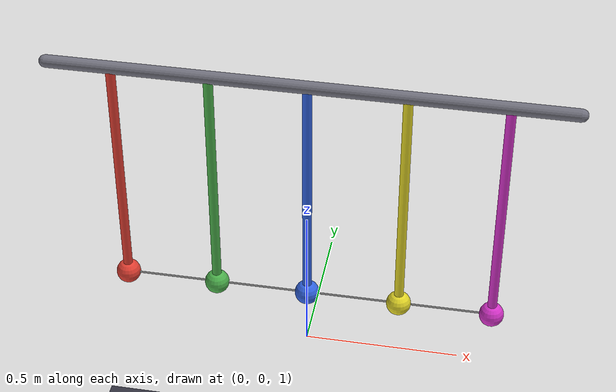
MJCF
<mujoco model="coupled_pendulums">
  <option gravity="0 0 -9.81" timestep="0.005"/>
  <default>
    <joint damping="0.08"/>
    <geom friction="0.5 0.02 0.02"/>
  </default>
  <worldbody>
    <light pos="0 0 5" diffuse="0.9 0.9 0.9"/>
    <geom name="floor" type="plane" size="5 5 0.1" rgba="0.2 0.2 0.25 1"/>
    <body name="bar" pos="0 0 2">
      <geom type="capsule" fromto="-0.8 0 0 0.8 0 0" size="0.02"
            rgba="0.45 0.45 0.5 1" mass="5"/>
      <body name="p1" pos="-0.6 0 0">
        <joint name="j1" type="hinge" axis="0 1 0"/>
        <geom type="capsule" fromto="0 0 0 0 0 -0.8" size="0.015"
              rgba="0.9 0.25 0.2 1" mass="0.3"/>
        <geom name="bob1" type="sphere" pos="0 0 -0.8" size="0.04"
              rgba="0.9 0.25 0.2 1" mass="0.5"/>
        <site name="s1" pos="0 0 -0.8" rgba="0 0 0 0"/>
      </body>
      <body name="p2" pos="-0.3 0 0">
        <joint name="j2" type="hinge" axis="0 1 0"/>
        <geom type="capsule" fromto="0 0 0 0 0 -0.8" size="0.015"
              rgba="0.3 0.7 0.3 1" mass="0.3"/>
        <geom name="bob2" type="sphere" pos="0 0 -0.8" size="0.04"
              rgba="0.3 0.7 0.3 1" mass="0.5"/>
        <site name="s2" pos="0 0 -0.8" rgba="0 0 0 0"/>
      </body>
      <body name="p3" pos="0 0 0">
        <joint name="j3" type="hinge" axis="0 1 0"/>
        <geom type="capsule" fromto="0 0 0 0 0 -0.8" size="0.015"
              rgba="0.2 0.4 0.9 1" mass="0.3"/>
        <geom name="bob3" type="sphere" pos="0 0 -0.8" size="0.04"
              rgba="0.2 0.4 0.9 1" mass="0.5"/>
        <site name="s3" pos="0 0 -0.8" rgba="0 0 0 0"/>
      </body>
      <body name="p4" pos="0.3 0 0">
        <joint name="j4" type="hinge" axis="0 1 0"/>
        <geom type="capsule" fromto="0 0 0 0 0 -0.8" size="0.015"
              rgba="0.9 0.85 0.15 1" mass="0.3"/>
        <geom name="bob4" type="sphere" pos="0 0 -0.8" size="0.04"
              rgba="0.9 0.85 0.15 1" mass="0.5"/>
        <site name="s4" pos="0 0 -0.8" rgba="0 0 0 0"/>
      </body>
      <body name="p5" pos="0.6 0 0">
        <joint name="j5" type="hinge" axis="0 1 0"/>
        <geom type="capsule" fromto="0 0 0 0 0 -0.8" size="0.015"
              rgba="0.85 0.2 0.8 1" mass="0.3"/>
        <geom name="bob5" type="sphere" pos="0 0 -0.8" size="0.04"
              rgba="0.85 0.2 0.8 1" mass="0.5"/>
        <site name="s5" pos="0 0 -0.8" rgba="0 0 0 0"/>
      </body>
    </body>
  </worldbody>
  <tendon>
    <spatial name="spring12" stiffness="15" damping="0.5">
      <site site="s1"/>
      <site site="s2"/>
    </spatial>
    <spatial name="spring23" stiffness="15" damping="0.5">
      <site site="s2"/>
      <site site="s3"/>
    </spatial>
    <spatial name="spring34" stiffness="15" damping="0.5">
      <site site="s3"/>
      <site site="s4"/>
    </spatial>
    <spatial name="spring45" stiffness="15" damping="0.5">
      <site site="s4"/>
      <site site="s5"/>
    </spatial>
  </tendon>
  <sensor>
    <jointpos name="j1_pos" joint="j1"/>
    <jointpos name="j2_pos" joint="j2"/>
    <jointpos name="j3_pos" joint="j3"/>
    <jointpos name="j4_pos" joint="j4"/>
    <jointpos name="j5_pos" joint="j5"/>
    <jointvel name="j1_vel" joint="j1"/>
    <jointvel name="j2_vel" joint="j2"/>
    <jointvel name="j3_vel" joint="j3"/>
    <tendonpos name="spring12_len" tendon="spring12"/>
    <tendonpos name="spring23_len" tendon="spring23"/>
    <tendonpos name="spring34_len" tendon="spring34"/>
    <tendonpos name="spring45_len" tendon="spring45"/>
  </sensor>
</mujoco>
